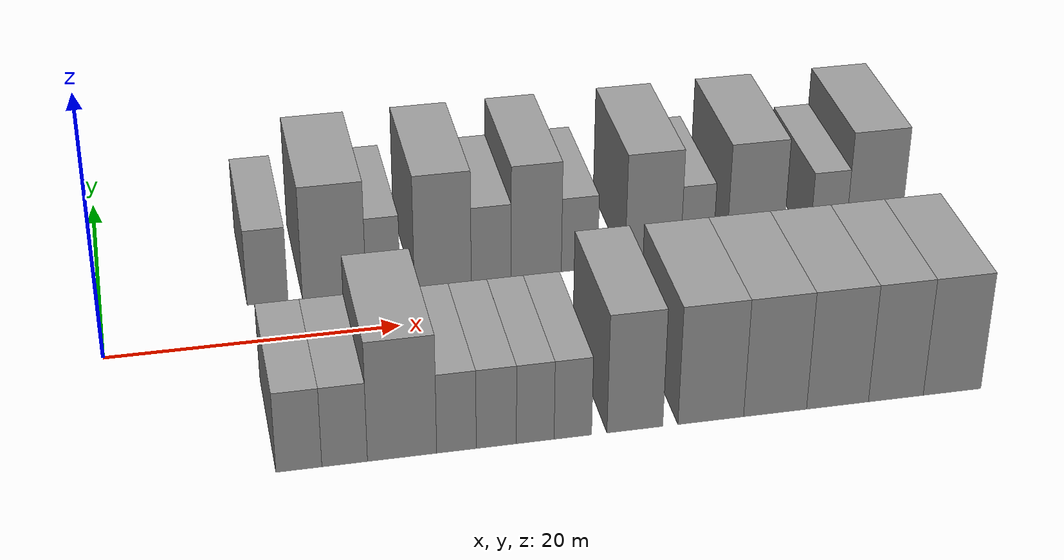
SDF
<sdf version="1.6">
 <world name="default">
  <model name="building_1">
   <static>1</static>
   <pose>11.4243 9.5000 0 0.000000 0.000000 1.570796</pose>
   <link name="link">
    <pose>0 0 3.00 0 0 0</pose>
    <collision name="collision"><geometry><box><size>10.0000 2.8487 6.0000</size></box></geometry></collision>
    <visual name="visual">
     <cast_shadows>0</cast_shadows>
     <geometry><box><size>10.0000 2.8487 6.0000</size></box></geometry>
     <material>
      <script>
       <uri>model://grey_wall/materials/scripts</uri>
       <uri>model://grey_wall/materials/textures</uri>
       <name>vrc/grey_wall</name>
      </script>
     </material>
    </visual>
   </link>
  </model>
  <model name="building_2">
   <static>1</static>
   <pose>16.0821 9.5000 0 0.000000 0.000000 1.570796</pose>
   <link name="link">
    <pose>0 0 4.50 0 0 0</pose>
    <collision name="collision"><geometry><box><size>10.0000 4.4667 9.0000</size></box></geometry></collision>
    <visual name="visual">
     <cast_shadows>0</cast_shadows>
     <geometry><box><size>10.0000 4.4667 9.0000</size></box></geometry>
     <material>
      <script>
       <uri>model://grey_wall/materials/scripts</uri>
       <uri>model://grey_wall/materials/textures</uri>
       <name>vrc/grey_wall</name>
      </script>
     </material>
    </visual>
   </link>
  </model>
  <model name="building_3">
   <static>1</static>
   <pose>19.5172 9.5000 0 0.000000 0.000000 1.570796</pose>
   <link name="link">
    <pose>0 0 3.00 0 0 0</pose>
    <collision name="collision"><geometry><box><size>10.0000 2.4036 6.0000</size></box></geometry></collision>
    <visual name="visual">
     <cast_shadows>0</cast_shadows>
     <geometry><box><size>10.0000 2.4036 6.0000</size></box></geometry>
     <material>
      <script>
       <uri>model://grey_wall/materials/scripts</uri>
       <uri>model://grey_wall/materials/textures</uri>
       <name>vrc/grey_wall</name>
      </script>
     </material>
    </visual>
   </link>
  </model>
  <model name="building_4">
   <static>1</static>
   <pose>23.7486 9.5000 0 0.000000 0.000000 1.570796</pose>
   <link name="link">
    <pose>0 0 4.50 0 0 0</pose>
    <collision name="collision"><geometry><box><size>10.0000 4.0592 9.0000</size></box></geometry></collision>
    <visual name="visual">
     <cast_shadows>0</cast_shadows>
     <geometry><box><size>10.0000 4.0592 9.0000</size></box></geometry>
     <material>
      <script>
       <uri>model://grey_wall/materials/scripts</uri>
       <uri>model://grey_wall/materials/textures</uri>
       <name>vrc/grey_wall</name>
      </script>
     </material>
    </visual>
   </link>
  </model>
  <model name="building_5">
   <static>1</static>
   <pose>27.2113 9.5000 0 0.000000 0.000000 1.570796</pose>
   <link name="link">
    <pose>0 0 3.00 0 0 0</pose>
    <collision name="collision"><geometry><box><size>10.0000 2.8662 6.0000</size></box></geometry></collision>
    <visual name="visual">
     <cast_shadows>0</cast_shadows>
     <geometry><box><size>10.0000 2.8662 6.0000</size></box></geometry>
     <material>
      <script>
       <uri>model://grey_wall/materials/scripts</uri>
       <uri>model://grey_wall/materials/textures</uri>
       <name>vrc/grey_wall</name>
      </script>
     </material>
    </visual>
   </link>
  </model>
  <model name="building_6">
   <static>1</static>
   <pose>30.4555 9.5000 0 0.000000 0.000000 1.570796</pose>
   <link name="link">
    <pose>0 0 4.50 0 0 0</pose>
    <collision name="collision"><geometry><box><size>10.0000 3.6220 9.0000</size></box></geometry></collision>
    <visual name="visual">
     <cast_shadows>0</cast_shadows>
     <geometry><box><size>10.0000 3.6220 9.0000</size></box></geometry>
     <material>
      <script>
       <uri>model://grey_wall/materials/scripts</uri>
       <uri>model://grey_wall/materials/textures</uri>
       <name>vrc/grey_wall</name>
      </script>
     </material>
    </visual>
   </link>
  </model>
  <model name="building_7">
   <static>1</static>
   <pose>33.5878 9.5000 0 0.000000 0.000000 1.570796</pose>
   <link name="link">
    <pose>0 0 3.00 0 0 0</pose>
    <collision name="collision"><geometry><box><size>10.0000 2.6427 6.0000</size></box></geometry></collision>
    <visual name="visual">
     <cast_shadows>0</cast_shadows>
     <geometry><box><size>10.0000 2.6427 6.0000</size></box></geometry>
     <material>
      <script>
       <uri>model://grey_wall/materials/scripts</uri>
       <uri>model://grey_wall/materials/textures</uri>
       <name>vrc/grey_wall</name>
      </script>
     </material>
    </visual>
   </link>
  </model>
  <model name="building_8">
   <static>1</static>
   <pose>38.9452 9.5000 0 0.000000 0.000000 1.570796</pose>
   <link name="link">
    <pose>0 0 4.50 0 0 0</pose>
    <collision name="collision"><geometry><box><size>10.0000 4.0722 9.0000</size></box></geometry></collision>
    <visual name="visual">
     <cast_shadows>0</cast_shadows>
     <geometry><box><size>10.0000 4.0722 9.0000</size></box></geometry>
     <material>
      <script>
       <uri>model://grey_wall/materials/scripts</uri>
       <uri>model://grey_wall/materials/textures</uri>
       <name>vrc/grey_wall</name>
      </script>
     </material>
    </visual>
   </link>
  </model>
  <model name="building_9">
   <static>1</static>
   <pose>42.1849 9.5000 0 0.000000 0.000000 1.570796</pose>
   <link name="link">
    <pose>0 0 3.00 0 0 0</pose>
    <collision name="collision"><geometry><box><size>10.0000 2.4071 6.0000</size></box></geometry></collision>
    <visual name="visual">
     <cast_shadows>0</cast_shadows>
     <geometry><box><size>10.0000 2.4071 6.0000</size></box></geometry>
     <material>
      <script>
       <uri>model://grey_wall/materials/scripts</uri>
       <uri>model://grey_wall/materials/textures</uri>
       <name>vrc/grey_wall</name>
      </script>
     </material>
    </visual>
   </link>
  </model>
  <model name="building_10">
   <static>1</static>
   <pose>46.5033 9.5000 0 0.000000 0.000000 1.570796</pose>
   <link name="link">
    <pose>0 0 4.50 0 0 0</pose>
    <collision name="collision"><geometry><box><size>10.0000 4.2298 9.0000</size></box></geometry></collision>
    <visual name="visual">
     <cast_shadows>0</cast_shadows>
     <geometry><box><size>10.0000 4.2298 9.0000</size></box></geometry>
     <material>
      <script>
       <uri>model://grey_wall/materials/scripts</uri>
       <uri>model://grey_wall/materials/textures</uri>
       <name>vrc/grey_wall</name>
      </script>
     </material>
    </visual>
   </link>
  </model>
  <model name="building_11">
   <static>1</static>
   <pose>51.9629 9.5000 0 0.000000 0.000000 1.570796</pose>
   <link name="link">
    <pose>0 0 3.00 0 0 0</pose>
    <collision name="collision"><geometry><box><size>10.0000 2.6895 6.0000</size></box></geometry></collision>
    <visual name="visual">
     <cast_shadows>0</cast_shadows>
     <geometry><box><size>10.0000 2.6895 6.0000</size></box></geometry>
     <material>
      <script>
       <uri>model://grey_wall/materials/scripts</uri>
       <uri>model://grey_wall/materials/textures</uri>
       <name>vrc/grey_wall</name>
      </script>
     </material>
    </visual>
   </link>
  </model>
  <model name="building_12">
   <static>1</static>
   <pose>55.4036 9.5000 0 0.000000 0.000000 1.570796</pose>
   <link name="link">
    <pose>0 0 4.50 0 0 0</pose>
    <collision name="collision"><geometry><box><size>10.0000 4.1919 9.0000</size></box></geometry></collision>
    <visual name="visual">
     <cast_shadows>0</cast_shadows>
     <geometry><box><size>10.0000 4.1919 9.0000</size></box></geometry>
     <material>
      <script>
       <uri>model://grey_wall/materials/scripts</uri>
       <uri>model://grey_wall/materials/textures</uri>
       <name>vrc/grey_wall</name>
      </script>
     </material>
    </visual>
   </link>
  </model>
  <model name="building_50">
   <static>1</static>
   <pose>11.4332 -9.5000 0 0.000000 0.000000 1.570796</pose>
   <link name="link">
    <pose>0 0 3.00 0 0 0</pose>
    <collision name="collision"><geometry><box><size>10.0000 2.8665 6.0000</size></box></geometry></collision>
    <visual name="visual">
     <cast_shadows>0</cast_shadows>
     <geometry><box><size>10.0000 2.8665 6.0000</size></box></geometry>
     <material>
      <script>
       <uri>model://grey_wall/materials/scripts</uri>
       <uri>model://grey_wall/materials/textures</uri>
       <name>vrc/grey_wall</name>
      </script>
     </material>
    </visual>
   </link>
  </model>
  <model name="building_51">
   <static>1</static>
   <pose>14.2989 -9.5000 0 0.000000 0.000000 1.570796</pose>
   <link name="link">
    <pose>0 0 3.00 0 0 0</pose>
    <collision name="collision"><geometry><box><size>10.0000 2.8649 6.0000</size></box></geometry></collision>
    <visual name="visual">
     <cast_shadows>0</cast_shadows>
     <geometry><box><size>10.0000 2.8649 6.0000</size></box></geometry>
     <material>
      <script>
       <uri>model://grey_wall/materials/scripts</uri>
       <uri>model://grey_wall/materials/textures</uri>
       <name>vrc/grey_wall</name>
      </script>
     </material>
    </visual>
   </link>
  </model>
  <model name="building_52">
   <static>1</static>
   <pose>17.9222 -9.5000 0 0.000000 0.000000 1.570796</pose>
   <link name="link">
    <pose>0 0 4.50 0 0 0</pose>
    <collision name="collision"><geometry><box><size>10.0000 4.3817 9.0000</size></box></geometry></collision>
    <visual name="visual">
     <cast_shadows>0</cast_shadows>
     <geometry><box><size>10.0000 4.3817 9.0000</size></box></geometry>
     <material>
      <script>
       <uri>model://grey_wall/materials/scripts</uri>
       <uri>model://grey_wall/materials/textures</uri>
       <name>vrc/grey_wall</name>
      </script>
     </material>
    </visual>
   </link>
  </model>
  <model name="building_53">
   <static>1</static>
   <pose>21.3764 -9.5000 0 0.000000 0.000000 1.570796</pose>
   <link name="link">
    <pose>0 0 3.00 0 0 0</pose>
    <collision name="collision"><geometry><box><size>10.0000 2.5267 6.0000</size></box></geometry></collision>
    <visual name="visual">
     <cast_shadows>0</cast_shadows>
     <geometry><box><size>10.0000 2.5267 6.0000</size></box></geometry>
     <material>
      <script>
       <uri>model://grey_wall/materials/scripts</uri>
       <uri>model://grey_wall/materials/textures</uri>
       <name>vrc/grey_wall</name>
      </script>
     </material>
    </visual>
   </link>
  </model>
  <model name="building_54">
   <static>1</static>
   <pose>23.9281 -9.5000 0 0.000000 0.000000 1.570796</pose>
   <link name="link">
    <pose>0 0 3.00 0 0 0</pose>
    <collision name="collision"><geometry><box><size>10.0000 2.5768 6.0000</size></box></geometry></collision>
    <visual name="visual">
     <cast_shadows>0</cast_shadows>
     <geometry><box><size>10.0000 2.5768 6.0000</size></box></geometry>
     <material>
      <script>
       <uri>model://grey_wall/materials/scripts</uri>
       <uri>model://grey_wall/materials/textures</uri>
       <name>vrc/grey_wall</name>
      </script>
     </material>
    </visual>
   </link>
  </model>
  <model name="building_55">
   <static>1</static>
   <pose>26.4350 -9.5000 0 0.000000 0.000000 1.570796</pose>
   <link name="link">
    <pose>0 0 3.00 0 0 0</pose>
    <collision name="collision"><geometry><box><size>10.0000 2.4369 6.0000</size></box></geometry></collision>
    <visual name="visual">
     <cast_shadows>0</cast_shadows>
     <geometry><box><size>10.0000 2.4369 6.0000</size></box></geometry>
     <material>
      <script>
       <uri>model://grey_wall/materials/scripts</uri>
       <uri>model://grey_wall/materials/textures</uri>
       <name>vrc/grey_wall</name>
      </script>
     </material>
    </visual>
   </link>
  </model>
  <model name="building_56">
   <static>1</static>
   <pose>28.8714 -9.5000 0 0.000000 0.000000 1.570796</pose>
   <link name="link">
    <pose>0 0 3.00 0 0 0</pose>
    <collision name="collision"><geometry><box><size>10.0000 2.4360 6.0000</size></box></geometry></collision>
    <visual name="visual">
     <cast_shadows>0</cast_shadows>
     <geometry><box><size>10.0000 2.4360 6.0000</size></box></geometry>
     <material>
      <script>
       <uri>model://grey_wall/materials/scripts</uri>
       <uri>model://grey_wall/materials/textures</uri>
       <name>vrc/grey_wall</name>
      </script>
     </material>
    </visual>
   </link>
  </model>
  <model name="building_57">
   <static>1</static>
   <pose>32.9219 -9.5000 0 0.000000 0.000000 1.570796</pose>
   <link name="link">
    <pose>0 0 4.50 0 0 0</pose>
    <collision name="collision"><geometry><box><size>10.0000 3.6650 9.0000</size></box></geometry></collision>
    <visual name="visual">
     <cast_shadows>0</cast_shadows>
     <geometry><box><size>10.0000 3.6650 9.0000</size></box></geometry>
     <material>
      <script>
       <uri>model://grey_wall/materials/scripts</uri>
       <uri>model://grey_wall/materials/textures</uri>
       <name>vrc/grey_wall</name>
      </script>
     </material>
    </visual>
   </link>
  </model>
  <model name="building_58">
   <static>1</static>
   <pose>37.9331 -9.5000 0 0.000000 0.000000 1.570796</pose>
   <link name="link">
    <pose>0 0 4.50 0 0 0</pose>
    <collision name="collision"><geometry><box><size>10.0000 4.3574 9.0000</size></box></geometry></collision>
    <visual name="visual">
     <cast_shadows>0</cast_shadows>
     <geometry><box><size>10.0000 4.3574 9.0000</size></box></geometry>
     <material>
      <script>
       <uri>model://grey_wall/materials/scripts</uri>
       <uri>model://grey_wall/materials/textures</uri>
       <name>vrc/grey_wall</name>
      </script>
     </material>
    </visual>
   </link>
  </model>
  <model name="building_59">
   <static>1</static>
   <pose>42.2224 -9.5000 0 0.000000 0.000000 1.570796</pose>
   <link name="link">
    <pose>0 0 4.50 0 0 0</pose>
    <collision name="collision"><geometry><box><size>10.0000 4.2212 9.0000</size></box></geometry></collision>
    <visual name="visual">
     <cast_shadows>0</cast_shadows>
     <geometry><box><size>10.0000 4.2212 9.0000</size></box></geometry>
     <material>
      <script>
       <uri>model://grey_wall/materials/scripts</uri>
       <uri>model://grey_wall/materials/textures</uri>
       <name>vrc/grey_wall</name>
      </script>
     </material>
    </visual>
   </link>
  </model>
  <model name="building_60">
   <static>1</static>
   <pose>46.4242 -9.5000 0 0.000000 0.000000 1.570796</pose>
   <link name="link">
    <pose>0 0 4.50 0 0 0</pose>
    <collision name="collision"><geometry><box><size>10.0000 4.1824 9.0000</size></box></geometry></collision>
    <visual name="visual">
     <cast_shadows>0</cast_shadows>
     <geometry><box><size>10.0000 4.1824 9.0000</size></box></geometry>
     <material>
      <script>
       <uri>model://grey_wall/materials/scripts</uri>
       <uri>model://grey_wall/materials/textures</uri>
       <name>vrc/grey_wall</name>
      </script>
     </material>
    </visual>
   </link>
  </model>
  <model name="building_61">
   <static>1</static>
   <pose>50.3894 -9.5000 0 0.000000 0.000000 1.570796</pose>
   <link name="link">
    <pose>0 0 4.50 0 0 0</pose>
    <collision name="collision"><geometry><box><size>10.0000 3.7479 9.0000</size></box></geometry></collision>
    <visual name="visual">
     <cast_shadows>0</cast_shadows>
     <geometry><box><size>10.0000 3.7479 9.0000</size></box></geometry>
     <material>
      <script>
       <uri>model://grey_wall/materials/scripts</uri>
       <uri>model://grey_wall/materials/textures</uri>
       <name>vrc/grey_wall</name>
      </script>
     </material>
    </visual>
   </link>
  </model>
  <model name="building_62">
   <static>1</static>
   <pose>54.2447 -9.5000 0 0.000000 0.000000 1.570796</pose>
   <link name="link">
    <pose>0 0 4.50 0 0 0</pose>
    <collision name="collision"><geometry><box><size>10.0000 3.9628 9.0000</size></box></geometry></collision>
    <visual name="visual">
     <cast_shadows>0</cast_shadows>
     <geometry><box><size>10.0000 3.9628 9.0000</size></box></geometry>
     <material>
      <script>
       <uri>model://grey_wall/materials/scripts</uri>
       <uri>model://grey_wall/materials/textures</uri>
       <name>vrc/grey_wall</name>
      </script>
     </material>
    </visual>
   </link>
  </model>
 </world>
</sdf>
